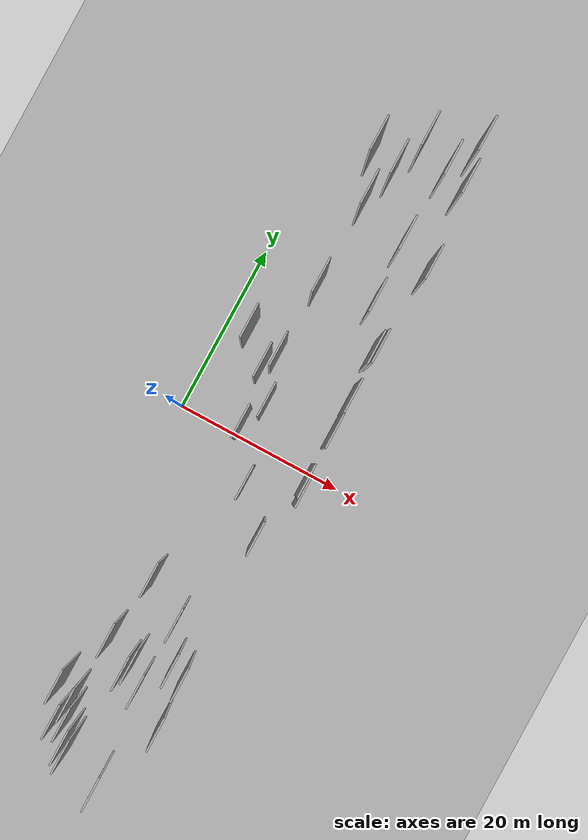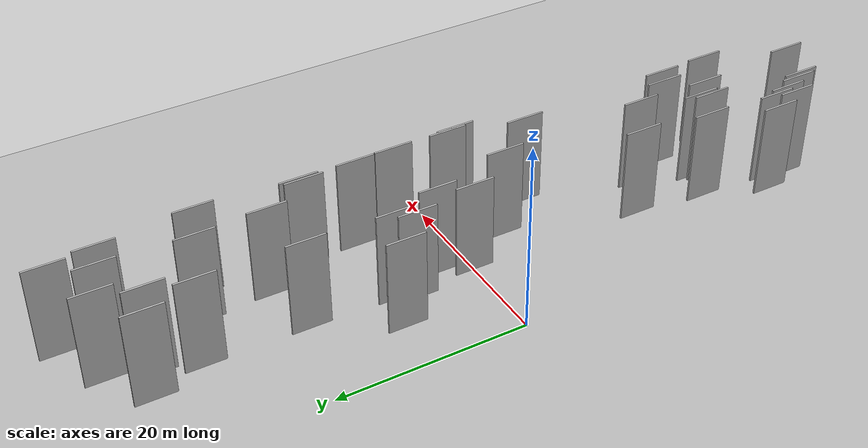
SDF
<?xml version="1.0" encoding="utf-8"?>

<sdf version="1.6">

   <world name="default">

      <gui fullscreen="0">

         <camera name="user_camera">

            <pose>-15 0 4.57585 0 0 0</pose>

            <view_controller>orbit</view_controller>

         </camera>

      </gui>

      <scene>

         <sky>

           <clouds>

             <speed>12</speed>

           </clouds>

         </sky>

         <ambient>0.4 0.4 0.4 1</ambient>

         <background>0.7 0.7 0.7 1</background>

         <shadows>1</shadows>

      </scene>

      <gravity>0 0 -9.8066</gravity>

      <magnetic_field>6e-06 2.3e-05 -4.2e-05</magnetic_field>

      <physics default="0" name="default_physics" type="ode">

         <ode>

            <solver>

               <type>quick</type>

               <iters>10</iters>

               <sor>1.0</sor>

               <use_dynamic_moi_rescaling>0</use_dynamic_moi_rescaling>

            </solver>

            <constraints>

               <cfm>0</cfm>

               <erp>0.2</erp>

               <contact_max_correcting_vel>100</contact_max_correcting_vel>

               <contact_surface_layer>0.001</contact_surface_layer>

            </constraints>

         </ode>

         <max_step_size>0.004</max_step_size>

         <real_time_factor>1</real_time_factor>

         <real_time_update_rate>250</real_time_update_rate>

      </physics>

      <light name="sun" type="directional">

         <cast_shadows>1</cast_shadows>

         <pose>0 0 10 0 0 0</pose>

         <diffuse>0.8 0.8 0.8 1</diffuse>

         <specular>0.2 0.2 0.2 1</specular>

         <attenuation>

            <range>1000</range>

            <constant>0.9</constant>

            <linear>0.01</linear>

            <quadratic>0.001</quadratic>

         </attenuation>

         <direction>-0.5 0.1 -0.9</direction>

      </light>

      <include>

         <name>ground_plane_1</name>

         <uri>model://HANNAS_ground_plane</uri>

         <pose>0 0 0  0 0 0</pose>

      </include>

      <include>

         <name>ground_plane_2</name>

         <uri>model://HANNAS_ground_plane</uri>

         <pose>100 0 0  0 0 0</pose>

      </include>

      <model name="HANNAS_wall_1">

         <static>1</static>

         <pose frame="">7.3173 -37.5238 2.5 0.000000 0.000000 1.570796</pose>

         <link name="link">

            <pose frame="">0 0 5.00 0 0 0</pose>

            <collision name="collision">

               <geometry>

                  <box>

                     <size>4.00 0.2 10.00</size>

                  </box>

               </geometry>

               <max_contacts>10</max_contacts>

               <surface>

                  <contact>

                     <ode/>

                  </contact>

                  <bounce/>

                  <friction>

                     <torsional>

                        <ode/>

                     </torsional>

                     <ode/>

                  </friction>

               </surface>

            </collision>

            <visual name="visual">

               <cast_shadows>0</cast_shadows>

               <geometry>

                  <box>

                     <size>4.00 0.2 10.00</size>

                  </box>

               </geometry>

               <material>

                  <script>

                     <uri>model://HANNAS_wall/materials/scripts</uri>

                     <uri>model://HANNAS_wall/materials/textures</uri>

                     <name>vrc/HANNAS_wall</name>

                  </script>

               </material>

            </visual>

            <self_collide>0</self_collide>

            <enable_wind>0</enable_wind>

            <kinematic>0</kinematic>

         </link>

      </model>

      <model name="HANNAS_wall_2">

         <static>1</static>

         <pose frame="">5.8204 -34.6056 2.5 0.000000 0.000000 1.570796</pose>

         <link name="link">

            <pose frame="">0 0 5.00 0 0 0</pose>

            <collision name="collision">

               <geometry>

                  <box>

                     <size>4.00 0.2 10.00</size>

                  </box>

               </geometry>

               <max_contacts>10</max_contacts>

               <surface>

                  <contact>

                     <ode/>

                  </contact>

                  <bounce/>

                  <friction>

                     <torsional>

                        <ode/>

                     </torsional>

                     <ode/>

                  </friction>

               </surface>

            </collision>

            <visual name="visual">

               <cast_shadows>0</cast_shadows>

               <geometry>

                  <box>

                     <size>4.00 0.2 10.00</size>

                  </box>

               </geometry>

               <material>

                  <script>

                     <uri>model://HANNAS_wall/materials/scripts</uri>

                     <uri>model://HANNAS_wall/materials/textures</uri>

                     <name>vrc/HANNAS_wall</name>

                  </script>

               </material>

            </visual>

            <self_collide>0</self_collide>

            <enable_wind>0</enable_wind>

            <kinematic>0</kinematic>

         </link>

      </model>

      <model name="HANNAS_wall_3">

         <static>1</static>

         <pose frame="">3.0021 10.9144 2.5 0.000000 0.000000 1.570796</pose>

         <link name="link">

            <pose frame="">0 0 5.00 0 0 0</pose>

            <collision name="collision">

               <geometry>

                  <box>

                     <size>4.00 0.2 10.00</size>

                  </box>

               </geometry>

               <max_contacts>10</max_contacts>

               <surface>

                  <contact>

                     <ode/>

                  </contact>

                  <bounce/>

                  <friction>

                     <torsional>

                        <ode/>

                     </torsional>

                     <ode/>

                  </friction>

               </surface>

            </collision>

            <visual name="visual">

               <cast_shadows>0</cast_shadows>

               <geometry>

                  <box>

                     <size>4.00 0.2 10.00</size>

                  </box>

               </geometry>

               <material>

                  <script>

                     <uri>model://HANNAS_wall/materials/scripts</uri>

                     <uri>model://HANNAS_wall/materials/textures</uri>

                     <name>vrc/HANNAS_wall</name>

                  </script>

               </material>

            </visual>

            <self_collide>0</self_collide>

            <enable_wind>0</enable_wind>

            <kinematic>0</kinematic>

         </link>

      </model>

      <model name="HANNAS_wall_4">

         <static>1</static>

         <pose frame="">14.2386 -8.4530 2.5 0.000000 0.000000 1.570796</pose>

         <link name="link">

            <pose frame="">0 0 5.00 0 0 0</pose>

            <collision name="collision">

               <geometry>

                  <box>

                     <size>4.00 0.2 10.00</size>

                  </box>

               </geometry>

               <max_contacts>10</max_contacts>

               <surface>

                  <contact>

                     <ode/>

                  </contact>

                  <bounce/>

                  <friction>

                     <torsional>

                        <ode/>

                     </torsional>

                     <ode/>

                  </friction>

               </surface>

            </collision>

            <visual name="visual">

               <cast_shadows>0</cast_shadows>

               <geometry>

                  <box>

                     <size>4.00 0.2 10.00</size>

                  </box>

               </geometry>

               <material>

                  <script>

                     <uri>model://HANNAS_wall/materials/scripts</uri>

                     <uri>model://HANNAS_wall/materials/textures</uri>

                     <name>vrc/HANNAS_wall</name>

                  </script>

               </material>

            </visual>

            <self_collide>0</self_collide>

            <enable_wind>0</enable_wind>

            <kinematic>0</kinematic>

         </link>

      </model>

      <model name="HANNAS_wall_5">

         <static>1</static>

         <pose frame="">6.6783 -17.2937 2.5 0.000000 0.000000 1.570796</pose>

         <link name="link">

            <pose frame="">0 0 5.00 0 0 0</pose>

            <collision name="collision">

               <geometry>

                  <box>

                     <size>4.00 0.2 10.00</size>

                  </box>

               </geometry>

               <max_contacts>10</max_contacts>

               <surface>

                  <contact>

                     <ode/>

                  </contact>

                  <bounce/>

                  <friction>

                     <torsional>

                        <ode/>

                     </torsional>

                     <ode/>

                  </friction>

               </surface>

            </collision>

            <visual name="visual">

               <cast_shadows>0</cast_shadows>

               <geometry>

                  <box>

                     <size>4.00 0.2 10.00</size>

                  </box>

               </geometry>

               <material>

                  <script>

                     <uri>model://HANNAS_wall/materials/scripts</uri>

                     <uri>model://HANNAS_wall/materials/textures</uri>

                     <name>vrc/HANNAS_wall</name>

                  </script>

               </material>

            </visual>

            <self_collide>0</self_collide>

            <enable_wind>0</enable_wind>

            <kinematic>0</kinematic>

         </link>

      </model>

      <model name="HANNAS_wall_6">

         <static>1</static>

         <pose frame="">12.9910 -24.4684 2.5 0.000000 0.000000 1.570796</pose>

         <link name="link">

            <pose frame="">0 0 5.00 0 0 0</pose>

            <collision name="collision">

               <geometry>

                  <box>

                     <size>4.00 0.2 10.00</size>

                  </box>

               </geometry>

               <max_contacts>10</max_contacts>

               <surface>

                  <contact>

                     <ode/>

                  </contact>

                  <bounce/>

                  <friction>

                     <torsional>

                        <ode/>

                     </torsional>

                     <ode/>

                  </friction>

               </surface>

            </collision>

            <visual name="visual">

               <cast_shadows>0</cast_shadows>

               <geometry>

                  <box>

                     <size>4.00 0.2 10.00</size>

                  </box>

               </geometry>

               <material>

                  <script>

                     <uri>model://HANNAS_wall/materials/scripts</uri>

                     <uri>model://HANNAS_wall/materials/textures</uri>

                     <name>vrc/HANNAS_wall</name>

                  </script>

               </material>

            </visual>

            <self_collide>0</self_collide>

            <enable_wind>0</enable_wind>

            <kinematic>0</kinematic>

         </link>

      </model>

      <model name="HANNAS_wall_7">

         <static>1</static>

         <pose frame="">11.1211 -20.2022 2.5 0.000000 0.000000 1.570796</pose>

         <link name="link">

            <pose frame="">0 0 5.00 0 0 0</pose>

            <collision name="collision">

               <geometry>

                  <box>

                     <size>4.00 0.2 10.00</size>

                  </box>

               </geometry>

               <max_contacts>10</max_contacts>

               <surface>

                  <contact>

                     <ode/>

                  </contact>

                  <bounce/>

                  <friction>

                     <torsional>

                        <ode/>

                     </torsional>

                     <ode/>

                  </friction>

               </surface>

            </collision>

            <visual name="visual">

               <cast_shadows>0</cast_shadows>

               <geometry>

                  <box>

                     <size>4.00 0.2 10.00</size>

                  </box>

               </geometry>

               <material>

                  <script>

                     <uri>model://HANNAS_wall/materials/scripts</uri>

                     <uri>model://HANNAS_wall/materials/textures</uri>

                     <name>vrc/HANNAS_wall</name>

                  </script>

               </material>

            </visual>

            <self_collide>0</self_collide>

            <enable_wind>0</enable_wind>

            <kinematic>0</kinematic>

         </link>

      </model>

      <model name="HANNAS_wall_8">

         <static>1</static>

         <pose frame="">16.1027 5.1645 2.5 0.000000 0.000000 1.570796</pose>

         <link name="link">

            <pose frame="">0 0 5.00 0 0 0</pose>

            <collision name="collision">

               <geometry>

                  <box>

                     <size>4.00 0.2 10.00</size>

                  </box>

               </geometry>

               <max_contacts>10</max_contacts>

               <surface>

                  <contact>

                     <ode/>

                  </contact>

                  <bounce/>

                  <friction>

                     <torsional>

                        <ode/>

                     </torsional>

                     <ode/>

                  </friction>

               </surface>

            </collision>

            <visual name="visual">

               <cast_shadows>0</cast_shadows>

               <geometry>

                  <box>

                     <size>4.00 0.2 10.00</size>

                  </box>

               </geometry>

               <material>

                  <script>

                     <uri>model://HANNAS_wall/materials/scripts</uri>

                     <uri>model://HANNAS_wall/materials/textures</uri>

                     <name>vrc/HANNAS_wall</name>

                  </script>

               </material>

            </visual>

            <self_collide>0</self_collide>

            <enable_wind>0</enable_wind>

            <kinematic>0</kinematic>

         </link>

      </model>

      <model name="HANNAS_wall_9">

         <static>1</static>

         <pose frame="">15.3145 39.4141 2.5 0.000000 0.000000 1.570796</pose>

         <link name="link">

            <pose frame="">0 0 5.00 0 0 0</pose>

            <collision name="collision">

               <geometry>

                  <box>

                     <size>4.00 0.2 10.00</size>

                  </box>

               </geometry>

               <max_contacts>10</max_contacts>

               <surface>

                  <contact>

                     <ode/>

                  </contact>

                  <bounce/>

                  <friction>

                     <torsional>

                        <ode/>

                     </torsional>

                     <ode/>

                  </friction>

               </surface>

            </collision>

            <visual name="visual">

               <cast_shadows>0</cast_shadows>

               <geometry>

                  <box>

                     <size>4.00 0.2 10.00</size>

                  </box>

               </geometry>

               <material>

                  <script>

                     <uri>model://HANNAS_wall/materials/scripts</uri>

                     <uri>model://HANNAS_wall/materials/textures</uri>

                     <name>vrc/HANNAS_wall</name>

                  </script>

               </material>

            </visual>

            <self_collide>0</self_collide>

            <enable_wind>0</enable_wind>

            <kinematic>0</kinematic>

         </link>

      </model>

      <model name="HANNAS_wall_10">

         <static>1</static>

         <pose frame="">16.2475 -1.7299 2.5 0.000000 0.000000 1.570796</pose>

         <link name="link">

            <pose frame="">0 0 5.00 0 0 0</pose>

            <collision name="collision">

               <geometry>

                  <box>

                     <size>4.00 0.2 10.00</size>

                  </box>

               </geometry>

               <max_contacts>10</max_contacts>

               <surface>

                  <contact>

                     <ode/>

                  </contact>

                  <bounce/>

                  <friction>

                     <torsional>

                        <ode/>

                     </torsional>

                     <ode/>

                  </friction>

               </surface>

            </collision>

            <visual name="visual">

               <cast_shadows>0</cast_shadows>

               <geometry>

                  <box>

                     <size>4.00 0.2 10.00</size>

                  </box>

               </geometry>

               <material>

                  <script>

                     <uri>model://HANNAS_wall/materials/scripts</uri>

                     <uri>model://HANNAS_wall/materials/textures</uri>

                     <name>vrc/HANNAS_wall</name>

                  </script>

               </material>

            </visual>

            <self_collide>0</self_collide>

            <enable_wind>0</enable_wind>

            <kinematic>0</kinematic>

         </link>

      </model>

      <model name="HANNAS_wall_11">

         <static>1</static>

         <pose frame="">4.7499 -34.8675 2.5 0.000000 0.000000 1.570796</pose>

         <link name="link">

            <pose frame="">0 0 5.00 0 0 0</pose>

            <collision name="collision">

               <geometry>

                  <box>

                     <size>4.00 0.2 10.00</size>

                  </box>

               </geometry>

               <max_contacts>10</max_contacts>

               <surface>

                  <contact>

                     <ode/>

                  </contact>

                  <bounce/>

                  <friction>

                     <torsional>

                        <ode/>

                     </torsional>

                     <ode/>

                  </friction>

               </surface>

            </collision>

            <visual name="visual">

               <cast_shadows>0</cast_shadows>

               <geometry>

                  <box>

                     <size>4.00 0.2 10.00</size>

                  </box>

               </geometry>

               <material>

                  <script>

                     <uri>model://HANNAS_wall/materials/scripts</uri>

                     <uri>model://HANNAS_wall/materials/textures</uri>

                     <name>vrc/HANNAS_wall</name>

                  </script>

               </material>

            </visual>

            <self_collide>0</self_collide>

            <enable_wind>0</enable_wind>

            <kinematic>0</kinematic>

         </link>

      </model>

      <model name="HANNAS_wall_12">

         <static>1</static>

         <pose frame="">8.4133 4.6597 2.5 0.000000 0.000000 1.570796</pose>

         <link name="link">

            <pose frame="">0 0 5.00 0 0 0</pose>

            <collision name="collision">

               <geometry>

                  <box>

                     <size>4.00 0.2 10.00</size>

                  </box>

               </geometry>

               <max_contacts>10</max_contacts>

               <surface>

                  <contact>

                     <ode/>

                  </contact>

                  <bounce/>

                  <friction>

                     <torsional>

                        <ode/>

                     </torsional>

                     <ode/>

                  </friction>

               </surface>

            </collision>

            <visual name="visual">

               <cast_shadows>0</cast_shadows>

               <geometry>

                  <box>

                     <size>4.00 0.2 10.00</size>

                  </box>

               </geometry>

               <material>

                  <script>

                     <uri>model://HANNAS_wall/materials/scripts</uri>

                     <uri>model://HANNAS_wall/materials/textures</uri>

                     <name>vrc/HANNAS_wall</name>

                  </script>

               </material>

            </visual>

            <self_collide>0</self_collide>

            <enable_wind>0</enable_wind>

            <kinematic>0</kinematic>

         </link>

      </model>

      <model name="HANNAS_wall_13">

         <static>1</static>

         <pose frame="">15.9140 34.7447 2.5 0.000000 0.000000 1.570796</pose>

         <link name="link">

            <pose frame="">0 0 5.00 0 0 0</pose>

            <collision name="collision">

               <geometry>

                  <box>

                     <size>4.00 0.2 10.00</size>

                  </box>

               </geometry>

               <max_contacts>10</max_contacts>

               <surface>

                  <contact>

                     <ode/>

                  </contact>

                  <bounce/>

                  <friction>

                     <torsional>

                        <ode/>

                     </torsional>

                     <ode/>

                  </friction>

               </surface>

            </collision>

            <visual name="visual">

               <cast_shadows>0</cast_shadows>

               <geometry>

                  <box>

                     <size>4.00 0.2 10.00</size>

                  </box>

               </geometry>

               <material>

                  <script>

                     <uri>model://HANNAS_wall/materials/scripts</uri>

                     <uri>model://HANNAS_wall/materials/textures</uri>

                     <name>vrc/HANNAS_wall</name>

                  </script>

               </material>

            </visual>

            <self_collide>0</self_collide>

            <enable_wind>0</enable_wind>

            <kinematic>0</kinematic>

         </link>

      </model>

      <model name="HANNAS_wall_14">

         <static>1</static>

         <pose frame="">14.5474 -25.3134 2.5 0.000000 0.000000 1.570796</pose>

         <link name="link">

            <pose frame="">0 0 5.00 0 0 0</pose>

            <collision name="collision">

               <geometry>

                  <box>

                     <size>4.00 0.2 10.00</size>

                  </box>

               </geometry>

               <max_contacts>10</max_contacts>

               <surface>

                  <contact>

                     <ode/>

                  </contact>

                  <bounce/>

                  <friction>

                     <torsional>

                        <ode/>

                     </torsional>

                     <ode/>

                  </friction>

               </surface>

            </collision>

            <visual name="visual">

               <cast_shadows>0</cast_shadows>

               <geometry>

                  <box>

                     <size>4.00 0.2 10.00</size>

                  </box>

               </geometry>

               <material>

                  <script>

                     <uri>model://HANNAS_wall/materials/scripts</uri>

                     <uri>model://HANNAS_wall/materials/textures</uri>

                     <name>vrc/HANNAS_wall</name>

                  </script>

               </material>

            </visual>

            <self_collide>0</self_collide>

            <enable_wind>0</enable_wind>

            <kinematic>0</kinematic>

         </link>

      </model>

      <model name="HANNAS_wall_15">

         <static>1</static>

         <pose frame="">8.5035 33.0226 2.5 0.000000 0.000000 1.570796</pose>

         <link name="link">

            <pose frame="">0 0 5.00 0 0 0</pose>

            <collision name="collision">

               <geometry>

                  <box>

                     <size>4.00 0.2 10.00</size>

                  </box>

               </geometry>

               <max_contacts>10</max_contacts>

               <surface>

                  <contact>

                     <ode/>

                  </contact>

                  <bounce/>

                  <friction>

                     <torsional>

                        <ode/>

                     </torsional>

                     <ode/>

                  </friction>

               </surface>

            </collision>

            <visual name="visual">

               <cast_shadows>0</cast_shadows>

               <geometry>

                  <box>

                     <size>4.00 0.2 10.00</size>

                  </box>

               </geometry>

               <material>

                  <script>

                     <uri>model://HANNAS_wall/materials/scripts</uri>

                     <uri>model://HANNAS_wall/materials/textures</uri>

                     <name>vrc/HANNAS_wall</name>

                  </script>

               </material>

            </visual>

            <self_collide>0</self_collide>

            <enable_wind>0</enable_wind>

            <kinematic>0</kinematic>

         </link>

      </model>

      <model name="HANNAS_wall_16">

         <static>1</static>

         <pose frame="">10.4784 -3.8831 2.5 0.000000 0.000000 1.570796</pose>

         <link name="link">

            <pose frame="">0 0 5.00 0 0 0</pose>

            <collision name="collision">

               <geometry>

                  <box>

                     <size>4.00 0.2 10.00</size>

                  </box>

               </geometry>

               <max_contacts>10</max_contacts>

               <surface>

                  <contact>

                     <ode/>

                  </contact>

                  <bounce/>

                  <friction>

                     <torsional>

                        <ode/>

                     </torsional>

                     <ode/>

                  </friction>

               </surface>

            </collision>

            <visual name="visual">

               <cast_shadows>0</cast_shadows>

               <geometry>

                  <box>

                     <size>4.00 0.2 10.00</size>

                  </box>

               </geometry>

               <material>

                  <script>

                     <uri>model://HANNAS_wall/materials/scripts</uri>

                     <uri>model://HANNAS_wall/materials/textures</uri>

                     <name>vrc/HANNAS_wall</name>

                  </script>

               </material>

            </visual>

            <self_collide>0</self_collide>

            <enable_wind>0</enable_wind>

            <kinematic>0</kinematic>

         </link>

      </model>

      <model name="HANNAS_wall_17">

         <static>1</static>

         <pose frame="">6.9984 9.8219 2.5 0.000000 0.000000 1.570796</pose>

         <link name="link">

            <pose frame="">0 0 5.00 0 0 0</pose>

            <collision name="collision">

               <geometry>

                  <box>

                     <size>4.00 0.2 10.00</size>

                  </box>

               </geometry>

               <max_contacts>10</max_contacts>

               <surface>

                  <contact>

                     <ode/>

                  </contact>

                  <bounce/>

                  <friction>

                     <torsional>

                        <ode/>

                     </torsional>

                     <ode/>

                  </friction>

               </surface>

            </collision>

            <visual name="visual">

               <cast_shadows>0</cast_shadows>

               <geometry>

                  <box>

                     <size>4.00 0.2 10.00</size>

                  </box>

               </geometry>

               <material>

                  <script>

                     <uri>model://HANNAS_wall/materials/scripts</uri>

                     <uri>model://HANNAS_wall/materials/textures</uri>

                     <name>vrc/HANNAS_wall</name>

                  </script>

               </material>

            </visual>

            <self_collide>0</self_collide>

            <enable_wind>0</enable_wind>

            <kinematic>0</kinematic>

         </link>

      </model>

      <model name="HANNAS_wall_18">

         <static>1</static>

         <pose frame="">5.5448 34.1717 2.5 0.000000 0.000000 1.570796</pose>

         <link name="link">

            <pose frame="">0 0 5.00 0 0 0</pose>

            <collision name="collision">

               <geometry>

                  <box>

                     <size>4.00 0.2 10.00</size>

                  </box>

               </geometry>

               <max_contacts>10</max_contacts>

               <surface>

                  <contact>

                     <ode/>

                  </contact>

                  <bounce/>

                  <friction>

                     <torsional>

                        <ode/>

                     </torsional>

                     <ode/>

                  </friction>

               </surface>

            </collision>

            <visual name="visual">

               <cast_shadows>0</cast_shadows>

               <geometry>

                  <box>

                     <size>4.00 0.2 10.00</size>

                  </box>

               </geometry>

               <material>

                  <script>

                     <uri>model://HANNAS_wall/materials/scripts</uri>

                     <uri>model://HANNAS_wall/materials/textures</uri>

                     <name>vrc/HANNAS_wall</name>

                  </script>

               </material>

            </visual>

            <self_collide>0</self_collide>

            <enable_wind>0</enable_wind>

            <kinematic>0</kinematic>

         </link>

      </model>

      <model name="HANNAS_wall_19">

         <static>1</static>

         <pose frame="">12.9956 26.5894 2.5 0.000000 0.000000 1.570796</pose>

         <link name="link">

            <pose frame="">0 0 5.00 0 0 0</pose>

            <collision name="collision">

               <geometry>

                  <box>

                     <size>4.00 0.2 10.00</size>

                  </box>

               </geometry>

               <max_contacts>10</max_contacts>

               <surface>

                  <contact>

                     <ode/>

                  </contact>

                  <bounce/>

                  <friction>

                     <torsional>

                        <ode/>

                     </torsional>

                     <ode/>

                  </friction>

               </surface>

            </collision>

            <visual name="visual">

               <cast_shadows>0</cast_shadows>

               <geometry>

                  <box>

                     <size>4.00 0.2 10.00</size>

                  </box>

               </geometry>

               <material>

                  <script>

                     <uri>model://HANNAS_wall/materials/scripts</uri>

                     <uri>model://HANNAS_wall/materials/textures</uri>

                     <name>vrc/HANNAS_wall</name>

                  </script>

               </material>

            </visual>

            <self_collide>0</self_collide>

            <enable_wind>0</enable_wind>

            <kinematic>0</kinematic>

         </link>

      </model>

      <model name="HANNAS_wall_20">

         <static>1</static>

         <pose frame="">9.9508 37.0574 2.5 0.000000 0.000000 1.570796</pose>

         <link name="link">

            <pose frame="">0 0 5.00 0 0 0</pose>

            <collision name="collision">

               <geometry>

                  <box>

                     <size>4.00 0.2 10.00</size>

                  </box>

               </geometry>

               <max_contacts>10</max_contacts>

               <surface>

                  <contact>

                     <ode/>

                  </contact>

                  <bounce/>

                  <friction>

                     <torsional>

                        <ode/>

                     </torsional>

                     <ode/>

                  </friction>

               </surface>

            </collision>

            <visual name="visual">

               <cast_shadows>0</cast_shadows>

               <geometry>

                  <box>

                     <size>4.00 0.2 10.00</size>

                  </box>

               </geometry>

               <material>

                  <script>

                     <uri>model://HANNAS_wall/materials/scripts</uri>

                     <uri>model://HANNAS_wall/materials/textures</uri>

                     <name>vrc/HANNAS_wall</name>

                  </script>

               </material>

            </visual>

            <self_collide>0</self_collide>

            <enable_wind>0</enable_wind>

            <kinematic>0</kinematic>

         </link>

      </model>

      <model name="HANNAS_wall_21">

         <static>1</static>

         <pose frame="">14.8064 -30.8882 2.5 0.000000 0.000000 1.570796</pose>

         <link name="link">

            <pose frame="">0 0 5.00 0 0 0</pose>

            <collision name="collision">

               <geometry>

                  <box>

                     <size>4.00 0.2 10.00</size>

                  </box>

               </geometry>

               <max_contacts>10</max_contacts>

               <surface>

                  <contact>

                     <ode/>

                  </contact>

                  <bounce/>

                  <friction>

                     <torsional>

                        <ode/>

                     </torsional>

                     <ode/>

                  </friction>

               </surface>

            </collision>

            <visual name="visual">

               <cast_shadows>0</cast_shadows>

               <geometry>

                  <box>

                     <size>4.00 0.2 10.00</size>

                  </box>

               </geometry>

               <material>

                  <script>

                     <uri>model://HANNAS_wall/materials/scripts</uri>

                     <uri>model://HANNAS_wall/materials/textures</uri>

                     <name>vrc/HANNAS_wall</name>

                  </script>

               </material>

            </visual>

            <self_collide>0</self_collide>

            <enable_wind>0</enable_wind>

            <kinematic>0</kinematic>

         </link>

      </model>

      <model name="HANNAS_wall_22">

         <static>1</static>

         <pose frame="">16.1065 15.0691 2.5 0.000000 0.000000 1.570796</pose>

         <link name="link">

            <pose frame="">0 0 5.00 0 0 0</pose>

            <collision name="collision">

               <geometry>

                  <box>

                     <size>4.00 0.2 10.00</size>

                  </box>

               </geometry>

               <max_contacts>10</max_contacts>

               <surface>

                  <contact>

                     <ode/>

                  </contact>

                  <bounce/>

                  <friction>

                     <torsional>

                        <ode/>

                     </torsional>

                     <ode/>

                  </friction>

               </surface>

            </collision>

            <visual name="visual">

               <cast_shadows>0</cast_shadows>

               <geometry>

                  <box>

                     <size>4.00 0.2 10.00</size>

                  </box>

               </geometry>

               <material>

                  <script>

                     <uri>model://HANNAS_wall/materials/scripts</uri>

                     <uri>model://HANNAS_wall/materials/textures</uri>

                     <name>vrc/HANNAS_wall</name>

                  </script>

               </material>

            </visual>

            <self_collide>0</self_collide>

            <enable_wind>0</enable_wind>

            <kinematic>0</kinematic>

         </link>

      </model>

      <model name="HANNAS_wall_23">

         <static>1</static>

         <pose frame="">7.2996 28.8524 2.5 0.000000 0.000000 1.570796</pose>

         <link name="link">

            <pose frame="">0 0 5.00 0 0 0</pose>

            <collision name="collision">

               <geometry>

                  <box>

                     <size>4.00 0.2 10.00</size>

                  </box>

               </geometry>

               <max_contacts>10</max_contacts>

               <surface>

                  <contact>

                     <ode/>

                  </contact>

                  <bounce/>

                  <friction>

                     <torsional>

                        <ode/>

                     </torsional>

                     <ode/>

                  </friction>

               </surface>

            </collision>

            <visual name="visual">

               <cast_shadows>0</cast_shadows>

               <geometry>

                  <box>

                     <size>4.00 0.2 10.00</size>

                  </box>

               </geometry>

               <material>

                  <script>

                     <uri>model://HANNAS_wall/materials/scripts</uri>

                     <uri>model://HANNAS_wall/materials/textures</uri>

                     <name>vrc/HANNAS_wall</name>

                  </script>

               </material>

            </visual>

            <self_collide>0</self_collide>

            <enable_wind>0</enable_wind>

            <kinematic>0</kinematic>

         </link>

      </model>

      <model name="HANNAS_wall_24">

         <static>1</static>

         <pose frame="">10.8847 -28.0021 2.5 0.000000 0.000000 1.570796</pose>

         <link name="link">

            <pose frame="">0 0 5.00 0 0 0</pose>

            <collision name="collision">

               <geometry>

                  <box>

                     <size>4.00 0.2 10.00</size>

                  </box>

               </geometry>

               <max_contacts>10</max_contacts>

               <surface>

                  <contact>

                     <ode/>

                  </contact>

                  <bounce/>

                  <friction>

                     <torsional>

                        <ode/>

                     </torsional>

                     <ode/>

                  </friction>

               </surface>

            </collision>

            <visual name="visual">

               <cast_shadows>0</cast_shadows>

               <geometry>

                  <box>

                     <size>4.00 0.2 10.00</size>

                  </box>

               </geometry>

               <material>

                  <script>

                     <uri>model://HANNAS_wall/materials/scripts</uri>

                     <uri>model://HANNAS_wall/materials/textures</uri>

                     <name>vrc/HANNAS_wall</name>

                  </script>

               </material>

            </visual>

            <self_collide>0</self_collide>

            <enable_wind>0</enable_wind>

            <kinematic>0</kinematic>

         </link>

      </model>

      <model name="HANNAS_wall_25">

         <static>1</static>

         <pose frame="">16.8069 25.2019 2.5 0.000000 0.000000 1.570796</pose>

         <link name="link">

            <pose frame="">0 0 5.00 0 0 0</pose>

            <collision name="collision">

               <geometry>

                  <box>

                     <size>4.00 0.2 10.00</size>

                  </box>

               </geometry>

               <max_contacts>10</max_contacts>

               <surface>

                  <contact>

                     <ode/>

                  </contact>

                  <bounce/>

                  <friction>

                     <torsional>

                        <ode/>

                     </torsional>

                     <ode/>

                  </friction>

               </surface>

            </collision>

            <visual name="visual">

               <cast_shadows>0</cast_shadows>

               <geometry>

                  <box>

                     <size>4.00 0.2 10.00</size>

                  </box>

               </geometry>

               <material>

                  <script>

                     <uri>model://HANNAS_wall/materials/scripts</uri>

                     <uri>model://HANNAS_wall/materials/textures</uri>

                     <name>vrc/HANNAS_wall</name>

                  </script>

               </material>

            </visual>

            <self_collide>0</self_collide>

            <enable_wind>0</enable_wind>

            <kinematic>0</kinematic>

         </link>

      </model>

      <model name="HANNAS_wall_26">

         <static>1</static>

         <pose frame="">15.7711 14.7173 2.5 0.000000 0.000000 1.570796</pose>

         <link name="link">

            <pose frame="">0 0 5.00 0 0 0</pose>

            <collision name="collision">

               <geometry>

                  <box>

                     <size>4.00 0.2 10.00</size>

                  </box>

               </geometry>

               <max_contacts>10</max_contacts>

               <surface>

                  <contact>

                     <ode/>

                  </contact>

                  <bounce/>

                  <friction>

                     <torsional>

                        <ode/>

                     </torsional>

                     <ode/>

                  </friction>

               </surface>

            </collision>

            <visual name="visual">

               <cast_shadows>0</cast_shadows>

               <geometry>

                  <box>

                     <size>4.00 0.2 10.00</size>

                  </box>

               </geometry>

               <material>

                  <script>

                     <uri>model://HANNAS_wall/materials/scripts</uri>

                     <uri>model://HANNAS_wall/materials/textures</uri>

                     <name>vrc/HANNAS_wall</name>

                  </script>

               </material>

            </visual>

            <self_collide>0</self_collide>

            <enable_wind>0</enable_wind>

            <kinematic>0</kinematic>

         </link>

      </model>

      <model name="HANNAS_wall_27">

         <static>1</static>

         <pose frame="">7.2424 18.5438 2.5 0.000000 0.000000 1.570796</pose>

         <link name="link">

            <pose frame="">0 0 5.00 0 0 0</pose>

            <collision name="collision">

               <geometry>

                  <box>

                     <size>4.00 0.2 10.00</size>

                  </box>

               </geometry>

               <max_contacts>10</max_contacts>

               <surface>

                  <contact>

                     <ode/>

                  </contact>

                  <bounce/>

                  <friction>

                     <torsional>

                        <ode/>

                     </torsional>

                     <ode/>

                  </friction>

               </surface>

            </collision>

            <visual name="visual">

               <cast_shadows>0</cast_shadows>

               <geometry>

                  <box>

                     <size>4.00 0.2 10.00</size>

                  </box>

               </geometry>

               <material>

                  <script>

                     <uri>model://HANNAS_wall/materials/scripts</uri>

                     <uri>model://HANNAS_wall/materials/textures</uri>

                     <name>vrc/HANNAS_wall</name>

                  </script>

               </material>

            </visual>

            <self_collide>0</self_collide>

            <enable_wind>0</enable_wind>

            <kinematic>0</kinematic>

         </link>

      </model>

      <model name="HANNAS_wall_28">

         <static>1</static>

         <pose frame="">7.1279 1.4620 2.5 0.000000 0.000000 1.570796</pose>

         <link name="link">

            <pose frame="">0 0 5.00 0 0 0</pose>

            <collision name="collision">

               <geometry>

                  <box>

                     <size>4.00 0.2 10.00</size>

                  </box>

               </geometry>

               <max_contacts>10</max_contacts>

               <surface>

                  <contact>

                     <ode/>

                  </contact>

                  <bounce/>

                  <friction>

                     <torsional>

                        <ode/>

                     </torsional>

                     <ode/>

                  </friction>

               </surface>

            </collision>

            <visual name="visual">

               <cast_shadows>0</cast_shadows>

               <geometry>

                  <box>

                     <size>4.00 0.2 10.00</size>

                  </box>

               </geometry>

               <material>

                  <script>

                     <uri>model://HANNAS_wall/materials/scripts</uri>

                     <uri>model://HANNAS_wall/materials/textures</uri>

                     <name>vrc/HANNAS_wall</name>

                  </script>

               </material>

            </visual>

            <self_collide>0</self_collide>

            <enable_wind>0</enable_wind>

            <kinematic>0</kinematic>

         </link>

      </model>

      <model name="HANNAS_wall_29">

         <static>1</static>

         <pose frame="">13.3449 19.5217 2.5 0.000000 0.000000 1.570796</pose>

         <link name="link">

            <pose frame="">0 0 5.00 0 0 0</pose>

            <collision name="collision">

               <geometry>

                  <box>

                     <size>4.00 0.2 10.00</size>

                  </box>

               </geometry>

               <max_contacts>10</max_contacts>

               <surface>

                  <contact>

                     <ode/>

                  </contact>

                  <bounce/>

                  <friction>

                     <torsional>

                        <ode/>

                     </torsional>

                     <ode/>

                  </friction>

               </surface>

            </collision>

            <visual name="visual">

               <cast_shadows>0</cast_shadows>

               <geometry>

                  <box>

                     <size>4.00 0.2 10.00</size>

                  </box>

               </geometry>

               <material>

                  <script>

                     <uri>model://HANNAS_wall/materials/scripts</uri>

                     <uri>model://HANNAS_wall/materials/textures</uri>

                     <name>vrc/HANNAS_wall</name>

                  </script>

               </material>

            </visual>

            <self_collide>0</self_collide>

            <enable_wind>0</enable_wind>

            <kinematic>0</kinematic>

         </link>

      </model>

      <model name="HANNAS_wall_30">

         <static>1</static>

         <pose frame="">8.6484 -27.1257 2.5 0.000000 0.000000 1.570796</pose>

         <link name="link">

            <pose frame="">0 0 5.00 0 0 0</pose>

            <collision name="collision">

               <geometry>

                  <box>

                     <size>4.00 0.2 10.00</size>

                  </box>

               </geometry>

               <max_contacts>10</max_contacts>

               <surface>

                  <contact>

                     <ode/>

                  </contact>

                  <bounce/>

                  <friction>

                     <torsional>

                        <ode/>

                     </torsional>

                     <ode/>

                  </friction>

               </surface>

            </collision>

            <visual name="visual">

               <cast_shadows>0</cast_shadows>

               <geometry>

                  <box>

                     <size>4.00 0.2 10.00</size>

                  </box>

               </geometry>

               <material>

                  <script>

                     <uri>model://HANNAS_wall/materials/scripts</uri>

                     <uri>model://HANNAS_wall/materials/textures</uri>

                     <name>vrc/HANNAS_wall</name>

                  </script>

               </material>

            </visual>

            <self_collide>0</self_collide>

            <enable_wind>0</enable_wind>

            <kinematic>0</kinematic>

         </link>

      </model>

      <model name="HANNAS_wall_31">

         <static>1</static>

         <pose frame="">3.3136 -31.5297 2.5 0.000000 0.000000 1.570796</pose>

         <link name="link">

            <pose frame="">0 0 5.00 0 0 0</pose>

            <collision name="collision">

               <geometry>

                  <box>

                     <size>4.00 0.2 10.00</size>

                  </box>

               </geometry>

               <max_contacts>10</max_contacts>

               <surface>

                  <contact>

                     <ode/>

                  </contact>

                  <bounce/>

                  <friction>

                     <torsional>

                        <ode/>

                     </torsional>

                     <ode/>

                  </friction>

               </surface>

            </collision>

            <visual name="visual">

               <cast_shadows>0</cast_shadows>

               <geometry>

                  <box>

                     <size>4.00 0.2 10.00</size>

                  </box>

               </geometry>

               <material>

                  <script>

                     <uri>model://HANNAS_wall/materials/scripts</uri>

                     <uri>model://HANNAS_wall/materials/textures</uri>

                     <name>vrc/HANNAS_wall</name>

                  </script>

               </material>

            </visual>

            <self_collide>0</self_collide>

            <enable_wind>0</enable_wind>

            <kinematic>0</kinematic>

         </link>

      </model>

      <model name="HANNAS_wall_32">

         <static>1</static>

         <pose frame="">16.0480 9.2440 2.5 0.000000 0.000000 1.570796</pose>

         <link name="link">

            <pose frame="">0 0 5.00 0 0 0</pose>

            <collision name="collision">

               <geometry>

                  <box>

                     <size>4.00 0.2 10.00</size>

                  </box>

               </geometry>

               <max_contacts>10</max_contacts>

               <surface>

                  <contact>

                     <ode/>

                  </contact>

                  <bounce/>

                  <friction>

                     <torsional>

                        <ode/>

                     </torsional>

                     <ode/>

                  </friction>

               </surface>

            </collision>

            <visual name="visual">

               <cast_shadows>0</cast_shadows>

               <geometry>

                  <box>

                     <size>4.00 0.2 10.00</size>

                  </box>

               </geometry>

               <material>

                  <script>

                     <uri>model://HANNAS_wall/materials/scripts</uri>

                     <uri>model://HANNAS_wall/materials/textures</uri>

                     <name>vrc/HANNAS_wall</name>

                  </script>

               </material>

            </visual>

            <self_collide>0</self_collide>

            <enable_wind>0</enable_wind>

            <kinematic>0</kinematic>

         </link>

      </model>

      <model name="HANNAS_wall_33">

         <static>1</static>

         <pose frame="">11.8660 -39.4650 2.5 0.000000 0.000000 1.570796</pose>

         <link name="link">

            <pose frame="">0 0 5.00 0 0 0</pose>

            <collision name="collision">

               <geometry>

                  <box>

                     <size>4.00 0.2 10.00</size>

                  </box>

               </geometry>

               <max_contacts>10</max_contacts>

               <surface>

                  <contact>

                     <ode/>

                  </contact>

                  <bounce/>

                  <friction>

                     <torsional>

                        <ode/>

                     </torsional>

                     <ode/>

                  </friction>

               </surface>

            </collision>

            <visual name="visual">

               <cast_shadows>0</cast_shadows>

               <geometry>

                  <box>

                     <size>4.00 0.2 10.00</size>

                  </box>

               </geometry>

               <material>

                  <script>

                     <uri>model://HANNAS_wall/materials/scripts</uri>

                     <uri>model://HANNAS_wall/materials/textures</uri>

                     <name>vrc/HANNAS_wall</name>

                  </script>

               </material>

            </visual>

            <self_collide>0</self_collide>

            <enable_wind>0</enable_wind>

            <kinematic>0</kinematic>

         </link>

      </model>

      <model name="HANNAS_wall_34">

         <static>1</static>

         <pose frame="">5.2605 -32.6557 2.5 0.000000 0.000000 1.570796</pose>

         <link name="link">

            <pose frame="">0 0 5.00 0 0 0</pose>

            <collision name="collision">

               <geometry>

                  <box>

                     <size>4.00 0.2 10.00</size>

                  </box>

               </geometry>

               <max_contacts>10</max_contacts>

               <surface>

                  <contact>

                     <ode/>

                  </contact>

                  <bounce/>

                  <friction>

                     <torsional>

                        <ode/>

                     </torsional>

                     <ode/>

                  </friction>

               </surface>

            </collision>

            <visual name="visual">

               <cast_shadows>0</cast_shadows>

               <geometry>

                  <box>

                     <size>4.00 0.2 10.00</size>

                  </box>

               </geometry>

               <material>

                  <script>

                     <uri>model://HANNAS_wall/materials/scripts</uri>

                     <uri>model://HANNAS_wall/materials/textures</uri>

                     <name>vrc/HANNAS_wall</name>

                  </script>

               </material>

            </visual>

            <self_collide>0</self_collide>

            <enable_wind>0</enable_wind>

            <kinematic>0</kinematic>

         </link>

      </model>

      <model name="HANNAS_wall_35">

         <static>1</static>

         <pose frame="">6.7639 -36.7947 2.5 0.000000 0.000000 1.570796</pose>

         <link name="link">

            <pose frame="">0 0 5.00 0 0 0</pose>

            <collision name="collision">

               <geometry>

                  <box>

                     <size>4.00 0.2 10.00</size>

                  </box>

               </geometry>

               <max_contacts>10</max_contacts>

               <surface>

                  <contact>

                     <ode/>

                  </contact>

                  <bounce/>

                  <friction>

                     <torsional>

                        <ode/>

                     </torsional>

                     <ode/>

                  </friction>

               </surface>

            </collision>

            <visual name="visual">

               <cast_shadows>0</cast_shadows>

               <geometry>

                  <box>

                     <size>4.00 0.2 10.00</size>

                  </box>

               </geometry>

               <material>

                  <script>

                     <uri>model://HANNAS_wall/materials/scripts</uri>

                     <uri>model://HANNAS_wall/materials/textures</uri>

                     <name>vrc/HANNAS_wall</name>

                  </script>

               </material>

            </visual>

            <self_collide>0</self_collide>

            <enable_wind>0</enable_wind>

            <kinematic>0</kinematic>

         </link>

      </model>

      <model name="HANNAS_wall_36">

         <static>1</static>

         <pose frame="">13.4171 35.5867 2.5 0.000000 0.000000 1.570796</pose>

         <link name="link">

            <pose frame="">0 0 5.00 0 0 0</pose>

            <collision name="collision">

               <geometry>

                  <box>

                     <size>4.00 0.2 10.00</size>

                  </box>

               </geometry>

               <max_contacts>10</max_contacts>

               <surface>

                  <contact>

                     <ode/>

                  </contact>

                  <bounce/>

                  <friction>

                     <torsional>

                        <ode/>

                     </torsional>

                     <ode/>

                  </friction>

               </surface>

            </collision>

            <visual name="visual">

               <cast_shadows>0</cast_shadows>

               <geometry>

                  <box>

                     <size>4.00 0.2 10.00</size>

                  </box>

               </geometry>

               <material>

                  <script>

                     <uri>model://HANNAS_wall/materials/scripts</uri>

                     <uri>model://HANNAS_wall/materials/textures</uri>

                     <name>vrc/HANNAS_wall</name>

                  </script>

               </material>

            </visual>

            <self_collide>0</self_collide>

            <enable_wind>0</enable_wind>

            <kinematic>0</kinematic>

         </link>

      </model>

      <model name="HANNAS_wall_37">

         <static>1</static>

         <pose frame="">6.0990 8.0452 2.5 0.000000 0.000000 1.570796</pose>

         <link name="link">

            <pose frame="">0 0 5.00 0 0 0</pose>

            <collision name="collision">

               <geometry>

                  <box>

                     <size>4.00 0.2 10.00</size>

                  </box>

               </geometry>

               <max_contacts>10</max_contacts>

               <surface>

                  <contact>

                     <ode/>

                  </contact>

                  <bounce/>

                  <friction>

                     <torsional>

                        <ode/>

                     </torsional>

                     <ode/>

                  </friction>

               </surface>

            </collision>

            <visual name="visual">

               <cast_shadows>0</cast_shadows>

               <geometry>

                  <box>

                     <size>4.00 0.2 10.00</size>

                  </box>

               </geometry>

               <material>

                  <script>

                     <uri>model://HANNAS_wall/materials/scripts</uri>

                     <uri>model://HANNAS_wall/materials/textures</uri>

                     <name>vrc/HANNAS_wall</name>

                  </script>

               </material>

            </visual>

            <self_collide>0</self_collide>

            <enable_wind>0</enable_wind>

            <kinematic>0</kinematic>

         </link>

      </model>

      <model name="HANNAS_wall_38">

         <static>1</static>

         <pose frame="">9.1053 -26.1152 2.5 0.000000 0.000000 1.570796</pose>

         <link name="link">

            <pose frame="">0 0 5.00 0 0 0</pose>

            <collision name="collision">

               <geometry>

                  <box>

                     <size>4.00 0.2 10.00</size>

                  </box>

               </geometry>

               <max_contacts>10</max_contacts>

               <surface>

                  <contact>

                     <ode/>

                  </contact>

                  <bounce/>

                  <friction>

                     <torsional>

                        <ode/>

                     </torsional>

                     <ode/>

                  </friction>

               </surface>

            </collision>

            <visual name="visual">

               <cast_shadows>0</cast_shadows>

               <geometry>

                  <box>

                     <size>4.00 0.2 10.00</size>

                  </box>

               </geometry>

               <material>

                  <script>

                     <uri>model://HANNAS_wall/materials/scripts</uri>

                     <uri>model://HANNAS_wall/materials/textures</uri>

                     <name>vrc/HANNAS_wall</name>

                  </script>

               </material>

            </visual>

            <self_collide>0</self_collide>

            <enable_wind>0</enable_wind>

            <kinematic>0</kinematic>

         </link>

      </model>

      <model name="HANNAS_wall_39">

         <static>1</static>

         <pose frame="">5.7285 -24.8703 2.5 0.000000 0.000000 1.570796</pose>

         <link name="link">

            <pose frame="">0 0 5.00 0 0 0</pose>

            <collision name="collision">

               <geometry>

                  <box>

                     <size>4.00 0.2 10.00</size>

                  </box>

               </geometry>

               <max_contacts>10</max_contacts>

               <surface>

                  <contact>

                     <ode/>

                  </contact>

                  <bounce/>

                  <friction>

                     <torsional>

                        <ode/>

                     </torsional>

                     <ode/>

                  </friction>

               </surface>

            </collision>

            <visual name="visual">

               <cast_shadows>0</cast_shadows>

               <geometry>

                  <box>

                     <size>4.00 0.2 10.00</size>

                  </box>

               </geometry>

               <material>

                  <script>

                     <uri>model://HANNAS_wall/materials/scripts</uri>

                     <uri>model://HANNAS_wall/materials/textures</uri>

                     <name>vrc/HANNAS_wall</name>

                  </script>

               </material>

            </visual>

            <self_collide>0</self_collide>

            <enable_wind>0</enable_wind>

            <kinematic>0</kinematic>

         </link>

      </model>

      <model name="HANNAS_wall_40">

         <static>1</static>

         <pose frame="">16.0185 -0.7565 2.5 0.000000 0.000000 1.570796</pose>

         <link name="link">

            <pose frame="">0 0 5.00 0 0 0</pose>

            <collision name="collision">

               <geometry>

                  <box>

                     <size>4.00 0.2 10.00</size>

                  </box>

               </geometry>

               <max_contacts>10</max_contacts>

               <surface>

                  <contact>

                     <ode/>

                  </contact>

                  <bounce/>

                  <friction>

                     <torsional>

                        <ode/>

                     </torsional>

                     <ode/>

                  </friction>

               </surface>

            </collision>

            <visual name="visual">

               <cast_shadows>0</cast_shadows>

               <geometry>

                  <box>

                     <size>4.00 0.2 10.00</size>

                  </box>

               </geometry>

               <material>

                  <script>

                     <uri>model://HANNAS_wall/materials/scripts</uri>

                     <uri>model://HANNAS_wall/materials/textures</uri>

                     <name>vrc/HANNAS_wall</name>

                  </script>

               </material>

            </visual>

            <self_collide>0</self_collide>

            <enable_wind>0</enable_wind>

            <kinematic>0</kinematic>

         </link>

      </model>

   </world>

</sdf>
